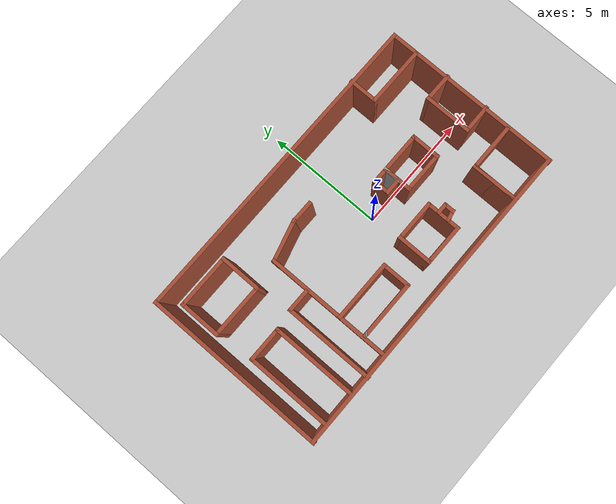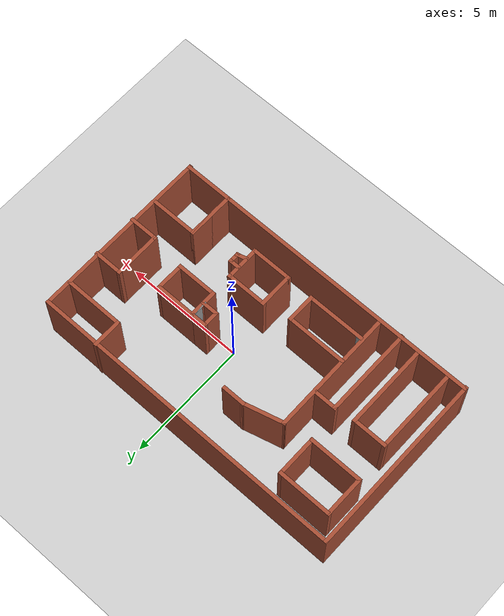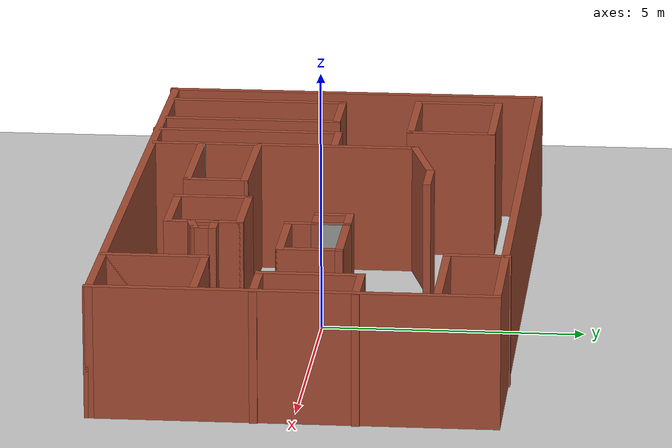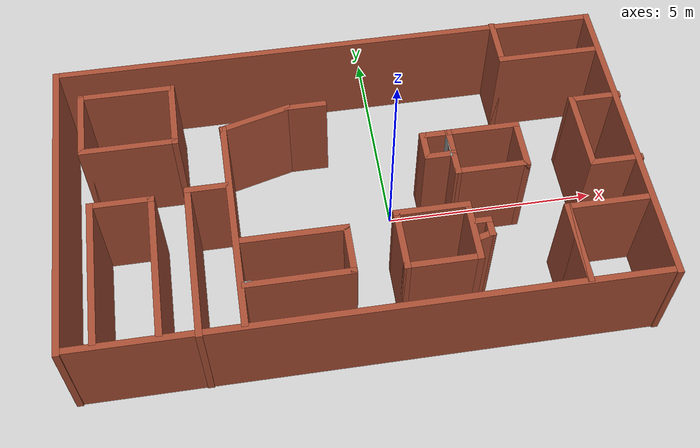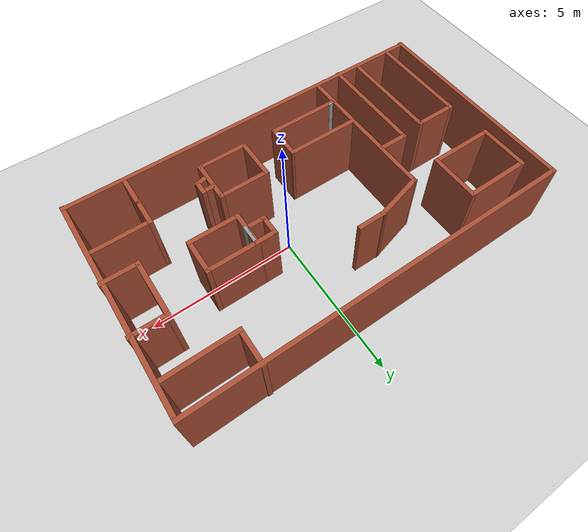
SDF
<sdf version="1.5">
 <world name="default">
  <light name="sun" type="directional">
   <pose>0 0 10 0 -0 0</pose>
   <diffuse>0.8 0.8 0.8 1</diffuse>
   <specular>0.2 0.2 0.2 1</specular>
   <attenuation>
    <range>1000</range>
    <constant>0.9</constant>
    <linear>0.01</linear>
    <quadratic>0.001</quadratic>
   </attenuation>
   <direction>-0.5 0.1 -0.9</direction>
  </light>
  <model name="ground_plane">
   <static>1</static>
   <link name="link">
    <collision name="collision">
     <geometry><plane><normal>0 0 1</normal><size>100 100</size></plane></geometry>
     <surface><friction><ode><mu>100</mu><mu2>50</mu2></ode></friction></surface>
    </collision>
    <visual name="visual">
     <cast_shadows>0</cast_shadows>
     <geometry><plane><normal>0 0 1</normal><size>100 100</size></plane></geometry>
     <material>
      <script><uri>file://media/materials/scripts/gazebo.material</uri><name>Gazebo/Grey</name></script>
     </material>
    </visual>
   </link>
  </model>
  <physics name="default_physics" default="0" type="ode">
   <max_step_size>0.001</max_step_size>
   <real_time_factor>1</real_time_factor>
   <real_time_update_rate>1000</real_time_update_rate>
   <gravity>0 0 -9.8</gravity>
   <magnetic_field>5.5645e-06 2.28758e-05 -4.23884e-05</magnetic_field>
  </physics>
  <scene><ambient>0.4 0.4 0.4 1</ambient><background>0.7 0.7 0.7 1</background><shadows>1</shadows></scene>
  <spherical_coordinates>
   <surface_model>EARTH_WGS84</surface_model>
   <latitude_deg>0</latitude_deg>
   <longitude_deg>0</longitude_deg>
   <elevation>0</elevation>
   <heading_deg>0</heading_deg>
  </spherical_coordinates>
  <model name="P109">
   <pose>-1 -0 0 0 -0 0</pose>
   <link name="Wall_0">
    <collision name="Wall_0_Collision">
     <geometry><box><size>7.54427 0.15 2.5</size></box></geometry>
     <pose>0 0 1.25 0 -0 0</pose>
    </collision>
    <visual name="Wall_0_Visual">
     <pose>0 0 1.25 0 -0 0</pose>
     <geometry><box><size>7.54427 0.15 2.5</size></box></geometry>
     <material>
      <script><uri>file://media/materials/scripts/gazebo.material</uri><name>Gazebo/Bricks</name></script>
      <ambient>1 1 1 1</ambient>
     </material>
    </visual>
    <pose>-6.57166 -0.015826 0 0 -0 1.5708</pose>
   </link>
   <link name="Wall_1">
    <collision name="Wall_1_Collision">
     <geometry><box><size>13.25 0.15 2.5</size></box></geometry>
     <pose>0 0 1.25 0 -0 0</pose>
    </collision>
    <visual name="Wall_1_Visual">
     <pose>0 0 1.25 0 -0 0</pose>
     <geometry><box><size>13.25 0.15 2.5</size></box></geometry>
     <material>
      <script><uri>file://media/materials/scripts/gazebo.material</uri><name>Gazebo/Bricks</name></script>
      <ambient>1 1 1 1</ambient>
     </material>
    </visual>
    <pose>-0.021664 3.68131 0 0 -0 0</pose>
   </link>
   <link name="Wall_10">
    <collision name="Wall_10_Collision">
     <geometry><box><size>2.55451 0.15 2.5</size></box></geometry>
     <pose>0 0 1.25 0 -0 0</pose>
    </collision>
    <visual name="Wall_10_Visual">
     <pose>0 0 1.25 0 -0 0</pose>
     <geometry><box><size>2.55451 0.15 2.5</size></box></geometry>
     <material>
      <script><uri>file://media/materials/scripts/gazebo.material</uri><name>Gazebo/Bricks</name></script>
      <ambient>1 1 1 1</ambient>
     </material>
    </visual>
    <pose>-1.5152 -1.60118 0 0 0 -0.002871</pose>
   </link>
   <link name="Wall_11">
    <collision name="Wall_11_Collision">
     <geometry><box><size>1.25 0.15 2.5</size></box></geometry>
     <pose>0 0 1.25 0 -0 0</pose>
    </collision>
    <visual name="Wall_11_Visual">
     <pose>0 0 1.25 0 -0 0</pose>
     <geometry><box><size>1.25 0.15 2.5</size></box></geometry>
     <material>
      <script><uri>file://media/materials/scripts/gazebo.material</uri><name>Gazebo/Bricks</name></script>
      <ambient>1 1 1 1</ambient>
     </material>
    </visual>
    <pose>-0.312948 -2.15463 0 0 0 -1.5708</pose>
   </link>
   <link name="Wall_12">
    <collision name="Wall_12_Collision">
     <geometry><box><size>2.4655 0.15 2.5</size></box></geometry>
     <pose>0 0 1.25 0 -0 0</pose>
    </collision>
    <visual name="Wall_12_Visual">
     <pose>0 0 1.25 0 -0 0</pose>
     <geometry><box><size>2.4655 0.15 2.5</size></box></geometry>
     <material>
      <script><uri>file://media/materials/scripts/gazebo.material</uri><name>Gazebo/Bricks</name></script>
      <ambient>1 1 1 1</ambient>
     </material>
    </visual>
    <pose>-1.4822 -2.70463 0 0 -0 3.14159</pose>
   </link>
   <link name="Wall_14">
    <collision name="Wall_14_Collision">
     <geometry><box><size>0.15 0.15 2.5</size></box></geometry>
     <pose>0 0 1.25 0 -0 0</pose>
    </collision>
    <visual name="Wall_14_Visual">
     <pose>0 0 1.25 0 -0 0</pose>
     <geometry><box><size>0.15 0.15 2.5</size></box></geometry>
     <material>
      <script><uri>file://media/materials/scripts/gazebo.material</uri><name>Gazebo/Grey</name></script>
      <ambient>1 1 1 1</ambient>
     </material>
    </visual>
    <pose>-2.56745 -2.69773 0 0 -0 0</pose>
   </link>
   <link name="Wall_17">
    <collision name="Wall_17_Collision">
     <geometry><box><size>0.75 0.15 2.5</size></box></geometry>
     <pose>0 0 1.25 0 -0 0</pose>
    </collision>
    <visual name="Wall_17_Visual">
     <pose>0 0 1.25 0 -0 0</pose>
     <geometry><box><size>0.75 0.15 2.5</size></box></geometry>
     <material>
      <script><uri>file://media/materials/scripts/gazebo.material</uri><name>Gazebo/Bricks</name></script>
      <ambient>1 1 1 1</ambient>
     </material>
    </visual>
    <pose>1.7939 0.313459 0 0 0 -1.5708</pose>
   </link>
   <link name="Wall_18">
    <collision name="Wall_18_Collision">
     <geometry><box><size>0.75 0.15 2.5</size></box></geometry>
     <pose>0 0 1.25 0 -0 0</pose>
    </collision>
    <visual name="Wall_18_Visual">
     <pose>0 0 1.25 0 -0 0</pose>
     <geometry><box><size>0.75 0.15 2.5</size></box></geometry>
     <material>
      <script><uri>file://media/materials/scripts/gazebo.material</uri><name>Gazebo/Bricks</name></script>
      <ambient>1 1 1 1</ambient>
     </material>
    </visual>
    <pose>2.0939 0.013459 0 0 -0 0</pose>
   </link>
   <link name="Wall_19">
    <collision name="Wall_19_Collision">
     <geometry><box><size>0.75 0.15 2.5</size></box></geometry>
     <pose>0 0 1.25 0 -0 0</pose>
    </collision>
    <visual name="Wall_19_Visual">
     <pose>0 0 1.25 0 -0 0</pose>
     <geometry><box><size>0.75 0.15 2.5</size></box></geometry>
     <material>
      <script><uri>file://media/materials/scripts/gazebo.material</uri><name>Gazebo/Grey</name></script>
      <ambient>1 1 1 1</ambient>
     </material>
    </visual>
    <pose>2.3939 0.313459 0 0 -0 1.5708</pose>
   </link>
   <link name="Wall_2">
    <collision name="Wall_2_Collision">
     <geometry><box><size>7.54427 0.15 2.5</size></box></geometry>
     <pose>0 0 1.25 0 -0 0</pose>
    </collision>
    <visual name="Wall_2_Visual">
     <pose>0 0 1.25 0 -0 0</pose>
     <geometry><box><size>7.54427 0.15 2.5</size></box></geometry>
     <material>
      <script><uri>file://media/materials/scripts/gazebo.material</uri><name>Gazebo/Bricks</name></script>
      <ambient>1 1 1 1</ambient>
     </material>
    </visual>
    <pose>6.52834 -0.015826 0 0 0 -1.5708</pose>
   </link>
   <link name="Wall_20">
    <collision name="Wall_20_Collision">
     <geometry><box><size>0.75 0.15 2.5</size></box></geometry>
     <pose>0 0 1.25 0 -0 0</pose>
    </collision>
    <visual name="Wall_20_Visual">
     <pose>0 0 1.25 0 -0 0</pose>
     <geometry><box><size>0.75 0.15 2.5</size></box></geometry>
     <material>
      <script><uri>file://media/materials/scripts/gazebo.material</uri><name>Gazebo/Bricks</name></script>
      <ambient>1 1 1 1</ambient>
     </material>
    </visual>
    <pose>2.0939 0.613459 0 0 -0 3.14159</pose>
   </link>
   <link name="Wall_22">
    <collision name="Wall_22_Collision">
     <geometry><box><size>1.25 0.15 2.5</size></box></geometry>
     <pose>0 0 1.25 0 -0 0</pose>
    </collision>
    <visual name="Wall_22_Visual">
     <pose>0 0 1.25 0 -0 0</pose>
     <geometry><box><size>1.25 0.15 2.5</size></box></geometry>
     <material>
      <script><uri>file://media/materials/scripts/gazebo.material</uri><name>Gazebo/Bricks</name></script>
      <ambient>1 1 1 1</ambient>
     </material>
    </visual>
    <pose>2.3939 0.063459 0 0 0 -1.5708</pose>
   </link>
   <link name="Wall_23">
    <collision name="Wall_23_Collision">
     <geometry><box><size>1.75 0.15 2.5</size></box></geometry>
     <pose>0 0 1.25 0 -0 0</pose>
    </collision>
    <visual name="Wall_23_Visual">
     <pose>0 0 1.25 0 -0 0</pose>
     <geometry><box><size>1.75 0.15 2.5</size></box></geometry>
     <material>
      <script><uri>file://media/materials/scripts/gazebo.material</uri><name>Gazebo/Bricks</name></script>
      <ambient>1 1 1 1</ambient>
     </material>
    </visual>
    <pose>3.1939 -0.486541 0 0 -0 0</pose>
   </link>
   <link name="Wall_24">
    <collision name="Wall_24_Collision">
     <geometry><box><size>1.25 0.15 2.5</size></box></geometry>
     <pose>0 0 1.25 0 -0 0</pose>
    </collision>
    <visual name="Wall_24_Visual">
     <pose>0 0 1.25 0 -0 0</pose>
     <geometry><box><size>1.25 0.15 2.5</size></box></geometry>
     <material>
      <script><uri>file://media/materials/scripts/gazebo.material</uri><name>Gazebo/Bricks</name></script>
      <ambient>1 1 1 1</ambient>
     </material>
    </visual>
    <pose>3.9939 0.063459 0 0 -0 1.5708</pose>
   </link>
   <link name="Wall_25">
    <collision name="Wall_25_Collision">
     <geometry><box><size>1.75 0.15 2.5</size></box></geometry>
     <pose>0 0 1.25 0 -0 0</pose>
    </collision>
    <visual name="Wall_25_Visual">
     <pose>0 0 1.25 0 -0 0</pose>
     <geometry><box><size>1.75 0.15 2.5</size></box></geometry>
     <material>
      <script><uri>file://media/materials/scripts/gazebo.material</uri><name>Gazebo/Bricks</name></script>
      <ambient>1 1 1 1</ambient>
     </material>
    </visual>
    <pose>3.1939 0.613459 0 0 -0 3.14159</pose>
   </link>
   <link name="Wall_27">
    <collision name="Wall_27_Collision">
     <geometry><box><size>1.5 0.15 2.5</size></box></geometry>
     <pose>0 0 1.25 0 -0 0</pose>
    </collision>
    <visual name="Wall_27_Visual">
     <pose>0 0 1.25 0 -0 0</pose>
     <geometry><box><size>1.5 0.15 2.5</size></box></geometry>
     <material>
      <script><uri>file://media/materials/scripts/gazebo.material</uri><name>Gazebo/Bricks</name></script>
      <ambient>1 1 1 1</ambient>
     </material>
    </visual>
    <pose>0.822412 -2.0739 0 0 0 -1.5708</pose>
   </link>
   <link name="Wall_28">
    <collision name="Wall_28_Collision">
     <geometry><box><size>1.75 0.15 2.5</size></box></geometry>
     <pose>0 0 1.25 0 -0 0</pose>
    </collision>
    <visual name="Wall_28_Visual">
     <pose>0 0 1.25 0 -0 0</pose>
     <geometry><box><size>1.75 0.15 2.5</size></box></geometry>
     <material>
      <script><uri>file://media/materials/scripts/gazebo.material</uri><name>Gazebo/Bricks</name></script>
      <ambient>1 1 1 1</ambient>
     </material>
    </visual>
    <pose>1.62241 -2.7489 0 0 -0 0</pose>
   </link>
   <link name="Wall_29">
    <collision name="Wall_29_Collision">
     <geometry><box><size>1.5 0.15 2.5</size></box></geometry>
     <pose>0 0 1.25 0 -0 0</pose>
    </collision>
    <visual name="Wall_29_Visual">
     <pose>0 0 1.25 0 -0 0</pose>
     <geometry><box><size>1.5 0.15 2.5</size></box></geometry>
     <material>
      <script><uri>file://media/materials/scripts/gazebo.material</uri><name>Gazebo/Bricks</name></script>
      <ambient>1 1 1 1</ambient>
     </material>
    </visual>
    <pose>2.42241 -2.0739 0 0 -0 1.5708</pose>
   </link>
   <link name="Wall_3">
    <collision name="Wall_3_Collision">
     <geometry><box><size>13.25 0.15 2.5</size></box></geometry>
     <pose>0 0 1.25 0 -0 0</pose>
    </collision>
    <visual name="Wall_3_Visual">
     <pose>0 0 1.25 0 -0 0</pose>
     <geometry><box><size>13.25 0.15 2.5</size></box></geometry>
     <material>
      <script><uri>file://media/materials/scripts/gazebo.material</uri><name>Gazebo/Bricks</name></script>
      <ambient>1 1 1 1</ambient>
     </material>
    </visual>
    <pose>-0.021664 -3.68237 0 0 -0 3.14159</pose>
   </link>
   <link name="Wall_30">
    <collision name="Wall_30_Collision">
     <geometry><box><size>1.75 0.15 2.5</size></box></geometry>
     <pose>0 0 1.25 0 -0 0</pose>
    </collision>
    <visual name="Wall_30_Visual">
     <pose>0 0 1.25 0 -0 0</pose>
     <geometry><box><size>1.75 0.15 2.5</size></box></geometry>
     <material>
      <script><uri>file://media/materials/scripts/gazebo.material</uri><name>Gazebo/Bricks</name></script>
      <ambient>1 1 1 1</ambient>
     </material>
    </visual>
    <pose>1.62241 -1.3989 0 0 -0 3.14159</pose>
   </link>
   <link name="Wall_33">
    <collision name="Wall_33_Collision">
     <geometry><box><size>0.5 0.15 2.5</size></box></geometry>
     <pose>0 0 1.25 0 -0 0</pose>
    </collision>
    <visual name="Wall_33_Visual">
     <pose>0 0 1.25 0 -0 0</pose>
     <geometry><box><size>0.5 0.15 2.5</size></box></geometry>
     <material>
      <script><uri>file://media/materials/scripts/gazebo.material</uri><name>Gazebo/Bricks</name></script>
      <ambient>1 1 1 1</ambient>
     </material>
    </visual>
    <pose>2.61655 -1.86152 0 0 -0 0</pose>
   </link>
   <link name="Wall_34">
    <collision name="Wall_34_Collision">
     <geometry><box><size>0.5 0.15 2.5</size></box></geometry>
     <pose>0 0 1.25 0 -0 0</pose>
    </collision>
    <visual name="Wall_34_Visual">
     <pose>0 0 1.25 0 -0 0</pose>
     <geometry><box><size>0.5 0.15 2.5</size></box></geometry>
     <material>
      <script><uri>file://media/materials/scripts/gazebo.material</uri><name>Gazebo/Bricks</name></script>
      <ambient>1 1 1 1</ambient>
     </material>
    </visual>
    <pose>2.79155 -2.03652 0 0 0 -1.5708</pose>
   </link>
   <link name="Wall_35">
    <collision name="Wall_35_Collision">
     <geometry><box><size>0.5 0.15 2.5</size></box></geometry>
     <pose>0 0 1.25 0 -0 0</pose>
    </collision>
    <visual name="Wall_35_Visual">
     <pose>0 0 1.25 0 -0 0</pose>
     <geometry><box><size>0.5 0.15 2.5</size></box></geometry>
     <material>
      <script><uri>file://media/materials/scripts/gazebo.material</uri><name>Gazebo/Bricks</name></script>
      <ambient>1 1 1 1</ambient>
     </material>
    </visual>
    <pose>2.62252 -2.25681 0 0 0 -2.87979</pose>
   </link>
   <link name="Wall_37">
    <collision name="Wall_37_Collision">
     <geometry><box><size>2 0.15 2.5</size></box></geometry>
     <pose>0 0 1.25 0 -0 0</pose>
    </collision>
    <visual name="Wall_37_Visual">
     <pose>0 0 1.25 0 -0 0</pose>
     <geometry><box><size>2 0.15 2.5</size></box></geometry>
     <material>
      <script><uri>file://media/materials/scripts/gazebo.material</uri><name>Gazebo/Bricks</name></script>
      <ambient>1 1 1 1</ambient>
     </material>
    </visual>
    <pose>4.5927 -2.71712 0 0 0 -1.5708</pose>
   </link>
   <link name="Wall_38">
    <collision name="Wall_38_Collision">
     <geometry><box><size>2 0.15 2.5</size></box></geometry>
     <pose>0 0 1.25 0 -0 0</pose>
    </collision>
    <visual name="Wall_38_Visual">
     <pose>0 0 1.25 0 -0 0</pose>
     <geometry><box><size>2 0.15 2.5</size></box></geometry>
     <material>
      <script><uri>file://media/materials/scripts/gazebo.material</uri><name>Gazebo/Bricks</name></script>
      <ambient>1 1 1 1</ambient>
     </material>
    </visual>
    <pose>4.5927 -2.71712 0 0 -0 1.5708</pose>
   </link>
   <link name="Wall_39">
    <collision name="Wall_39_Collision">
     <geometry><box><size>2 0.15 2.5</size></box></geometry>
     <pose>0 0 1.25 0 -0 0</pose>
    </collision>
    <visual name="Wall_39_Visual">
     <pose>0 0 1.25 0 -0 0</pose>
     <geometry><box><size>2 0.15 2.5</size></box></geometry>
     <material>
      <script><uri>file://media/materials/scripts/gazebo.material</uri><name>Gazebo/Bricks</name></script>
      <ambient>1 1 1 1</ambient>
     </material>
    </visual>
    <pose>5.5177 -1.79212 0 0 -0 0</pose>
   </link>
   <link name="Wall_41">
    <collision name="Wall_41_Collision">
     <geometry><box><size>1.25 0.15 2.5</size></box></geometry>
     <pose>0 0 1.25 0 -0 0</pose>
    </collision>
    <visual name="Wall_41_Visual">
     <pose>0 0 1.25 0 -0 0</pose>
     <geometry><box><size>1.25 0.15 2.5</size></box></geometry>
     <material>
      <script><uri>file://media/materials/scripts/gazebo.material</uri><name>Gazebo/Bricks</name></script>
      <ambient>1 1 1 1</ambient>
     </material>
    </visual>
    <pose>4.13009 3.16296 0 0 0 -1.5708</pose>
   </link>
   <link name="Wall_42">
    <collision name="Wall_42_Collision">
     <geometry><box><size>2.5 0.15 2.5</size></box></geometry>
     <pose>0 0 1.25 0 -0 0</pose>
    </collision>
    <visual name="Wall_42_Visual">
     <pose>0 0 1.25 0 -0 0</pose>
     <geometry><box><size>2.5 0.15 2.5</size></box></geometry>
     <material>
      <script><uri>file://media/materials/scripts/gazebo.material</uri><name>Gazebo/Bricks</name></script>
      <ambient>1 1 1 1</ambient>
     </material>
    </visual>
    <pose>5.30509 2.61296 0 0 -0 0</pose>
   </link>
   <link name="Wall_44">
    <collision name="Wall_44_Collision">
     <geometry><box><size>2 0.15 2.5</size></box></geometry>
     <pose>0 0 1.25 0 -0 0</pose>
    </collision>
    <visual name="Wall_44_Visual">
     <pose>0 0 1.25 0 -0 0</pose>
     <geometry><box><size>2 0.15 2.5</size></box></geometry>
     <material>
      <script><uri>file://media/materials/scripts/gazebo.material</uri><name>Gazebo/Bricks</name></script>
      <ambient>1 1 1 1</ambient>
     </material>
    </visual>
    <pose>5.47166 0.220463 0 0 0 -1.5708</pose>
   </link>
   <link name="Wall_46">
    <collision name="Wall_46_Collision">
     <geometry><box><size>1.25 0.15 2.5</size></box></geometry>
     <pose>0 0 1.25 0 -0 0</pose>
    </collision>
    <visual name="Wall_46_Visual">
     <pose>0 0 1.25 0 -0 0</pose>
     <geometry><box><size>1.25 0.15 2.5</size></box></geometry>
     <material>
      <script><uri>file://media/materials/scripts/gazebo.material</uri><name>Gazebo/Bricks</name></script>
      <ambient>1 1 1 1</ambient>
     </material>
    </visual>
    <pose>6.02166 1.14546 0 0 -0 0</pose>
   </link>
   <link name="Wall_48">
    <collision name="Wall_48_Collision">
     <geometry><box><size>1.25 0.15 2.5</size></box></geometry>
     <pose>0 0 1.25 0 -0 0</pose>
    </collision>
    <visual name="Wall_48_Visual">
     <pose>0 0 1.25 0 -0 0</pose>
     <geometry><box><size>1.25 0.15 2.5</size></box></geometry>
     <material>
      <script><uri>file://media/materials/scripts/gazebo.material</uri><name>Gazebo/Bricks</name></script>
      <ambient>1 1 1 1</ambient>
     </material>
    </visual>
    <pose>6.02166 -0.704537 0 0 -0 0</pose>
   </link>
   <link name="Wall_5">
    <collision name="Wall_5_Collision">
     <geometry><box><size>5.24004 0.15 2.5</size></box></geometry>
     <pose>0 0 1.25 0 -0 0</pose>
    </collision>
    <visual name="Wall_5_Visual">
     <pose>0 0 1.25 0 -0 0</pose>
     <geometry><box><size>5.24004 0.15 2.5</size></box></geometry>
     <material>
      <script><uri>file://media/materials/scripts/gazebo.material</uri><name>Gazebo/Bricks</name></script>
      <ambient>1 1 1 1</ambient>
     </material>
    </visual>
    <pose>-2.73804 -1.06168 0 0 -0 1.57473</pose>
   </link>
   <link name="Wall_50">
    <collision name="Wall_50_Collision">
     <geometry><box><size>1 0.15 2.5</size></box></geometry>
     <pose>0 0 1.25 0 -0 0</pose>
    </collision>
    <visual name="Wall_50_Visual">
     <pose>0 0 1.25 0 -0 0</pose>
     <geometry><box><size>1 0.15 2.5</size></box></geometry>
     <material>
      <script><uri>file://media/materials/scripts/gazebo.material</uri><name>Gazebo/Bricks</name></script>
      <ambient>1 1 1 1</ambient>
     </material>
    </visual>
    <pose>-3.25722 -0.10359 0 0 -0 3.14159</pose>
   </link>
   <link name="Wall_51">
    <collision name="Wall_51_Collision">
     <geometry><box><size>3.75 0.15 2.5</size></box></geometry>
     <pose>0 0 1.25 0 -0 0</pose>
    </collision>
    <visual name="Wall_51_Visual">
     <pose>0 0 1.25 0 -0 0</pose>
     <geometry><box><size>3.75 0.15 2.5</size></box></geometry>
     <material>
      <script><uri>file://media/materials/scripts/gazebo.material</uri><name>Gazebo/Bricks</name></script>
      <ambient>1 1 1 1</ambient>
     </material>
    </visual>
    <pose>-3.68222 -1.90359 0 0 0 -1.5708</pose>
   </link>
   <link name="Wall_53">
    <collision name="Wall_53_Collision">
     <geometry><box><size>1.5 0.15 2.5</size></box></geometry>
     <pose>0 0 1.25 0 -0 0</pose>
    </collision>
    <visual name="Wall_53_Visual">
     <pose>0 0 1.25 0 -0 0</pose>
     <geometry><box><size>1.5 0.15 2.5</size></box></geometry>
     <material>
      <script><uri>file://media/materials/scripts/gazebo.material</uri><name>Gazebo/Bricks</name></script>
      <ambient>1 1 1 1</ambient>
     </material>
    </visual>
    <pose>-5.1642 -0.219243 0 0 -0 0</pose>
   </link>
   <link name="Wall_54">
    <collision name="Wall_54_Collision">
     <geometry><box><size>3.5 0.15 2.5</size></box></geometry>
     <pose>0 0 1.25 0 -0 0</pose>
    </collision>
    <visual name="Wall_54_Visual">
     <pose>0 0 1.25 0 -0 0</pose>
     <geometry><box><size>3.5 0.15 2.5</size></box></geometry>
     <material>
      <script><uri>file://media/materials/scripts/gazebo.material</uri><name>Gazebo/Bricks</name></script>
      <ambient>1 1 1 1</ambient>
     </material>
    </visual>
    <pose>-4.4892 -1.89424 0 0 0 -1.5708</pose>
   </link>
   <link name="Wall_56">
    <collision name="Wall_56_Collision">
     <geometry><box><size>3.5 0.15 2.5</size></box></geometry>
     <pose>0 0 1.25 0 -0 0</pose>
    </collision>
    <visual name="Wall_56_Visual">
     <pose>0 0 1.25 0 -0 0</pose>
     <geometry><box><size>3.5 0.15 2.5</size></box></geometry>
     <material>
      <script><uri>file://media/materials/scripts/gazebo.material</uri><name>Gazebo/Bricks</name></script>
      <ambient>1 1 1 1</ambient>
     </material>
    </visual>
    <pose>-5.8392 -1.89424 0 0 0 -1.5708</pose>
   </link>
   <link name="Wall_58">
    <collision name="Wall_58_Collision">
     <geometry><box><size>1.75 0.15 2.5</size></box></geometry>
     <pose>0 0 1.25 0 -0 0</pose>
    </collision>
    <visual name="Wall_58_Visual">
     <pose>0 0 1.25 0 -0 0</pose>
     <geometry><box><size>1.75 0.15 2.5</size></box></geometry>
     <material>
      <script><uri>file://media/materials/scripts/gazebo.material</uri><name>Gazebo/Bricks</name></script>
      <ambient>1 1 1 1</ambient>
     </material>
    </visual>
    <pose>-6.00112 2.10339 0 0 0 -1.5708</pose>
   </link>
   <link name="Wall_59">
    <collision name="Wall_59_Collision">
     <geometry><box><size>2.26426 0.15 2.5</size></box></geometry>
     <pose>0 0 1.25 0 -0 0</pose>
    </collision>
    <visual name="Wall_59_Visual">
     <pose>0 0 1.25 0 -0 0</pose>
     <geometry><box><size>2.26426 0.15 2.5</size></box></geometry>
     <material>
      <script><uri>file://media/materials/scripts/gazebo.material</uri><name>Gazebo/Bricks</name></script>
      <ambient>1 1 1 1</ambient>
     </material>
    </visual>
    <pose>-4.94399 1.30339 0 0 -0 0</pose>
   </link>
   <link name="Wall_60">
    <collision name="Wall_60_Collision">
     <geometry><box><size>1.75 0.15 2.5</size></box></geometry>
     <pose>0 0 1.25 0 -0 0</pose>
    </collision>
    <visual name="Wall_60_Visual">
     <pose>0 0 1.25 0 -0 0</pose>
     <geometry><box><size>1.75 0.15 2.5</size></box></geometry>
     <material>
      <script><uri>file://media/materials/scripts/gazebo.material</uri><name>Gazebo/Bricks</name></script>
      <ambient>1 1 1 1</ambient>
     </material>
    </visual>
    <pose>-3.86373 2.10339 0 0 -0 1.5708</pose>
   </link>
   <link name="Wall_61">
    <collision name="Wall_61_Collision">
     <geometry><box><size>2.26426 0.15 2.5</size></box></geometry>
     <pose>0 0 1.25 0 -0 0</pose>
    </collision>
    <visual name="Wall_61_Visual">
     <pose>0 0 1.25 0 -0 0</pose>
     <geometry><box><size>2.26426 0.15 2.5</size></box></geometry>
     <material>
      <script><uri>file://media/materials/scripts/gazebo.material</uri><name>Gazebo/Bricks</name></script>
      <ambient>1 1 1 1</ambient>
     </material>
    </visual>
    <pose>-4.94399 2.90339 0 0 -0 3.14159</pose>
   </link>
   <link name="Wall_7">
    <collision name="Wall_7_Collision">
     <geometry><box><size>1.75 0.15 2.5</size></box></geometry>
     <pose>0 0 1.25 0 -0 0</pose>
    </collision>
    <visual name="Wall_7_Visual">
     <pose>0 0 1.25 0 -0 0</pose>
     <geometry><box><size>1.75 0.15 2.5</size></box></geometry>
     <material>
      <script><uri>file://media/materials/scripts/gazebo.material</uri><name>Gazebo/Bricks</name></script>
      <ambient>1 1 1 1</ambient>
     </material>
    </visual>
    <pose>-1.9753 1.69037 0 0 -0 0.261799</pose>
   </link>
   <link name="Wall_8">
    <collision name="Wall_8_Collision">
     <geometry><box><size>1 0.15 2.5</size></box></geometry>
     <pose>0 0 1.25 0 -0 0</pose>
    </collision>
    <visual name="Wall_8_Visual">
     <pose>0 0 1.25 0 -0 0</pose>
     <geometry><box><size>1 0.15 2.5</size></box></geometry>
     <material>
      <script><uri>file://media/materials/scripts/gazebo.material</uri><name>Gazebo/Bricks</name></script>
      <ambient>1 1 1 1</ambient>
     </material>
    </visual>
    <pose>-0.777562 1.89743 0 0 -0 0</pose>
   </link>
   <static>1</static>
  </model>
 </world>
</sdf>
